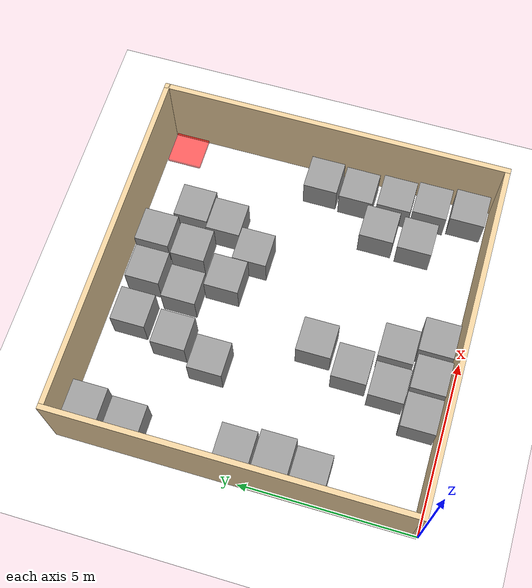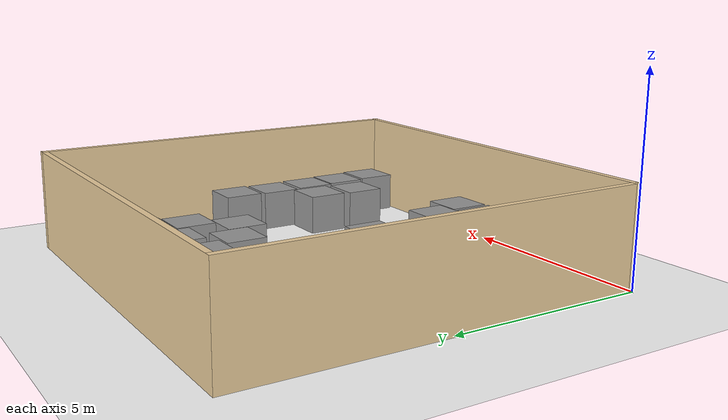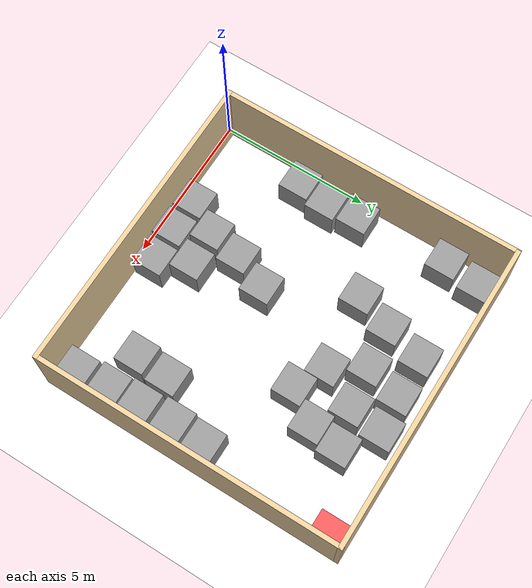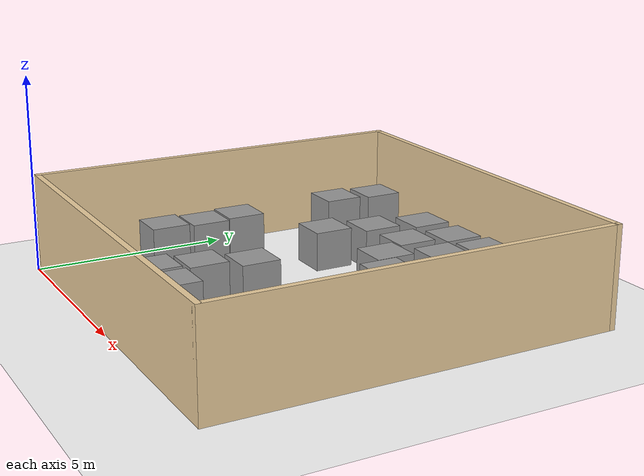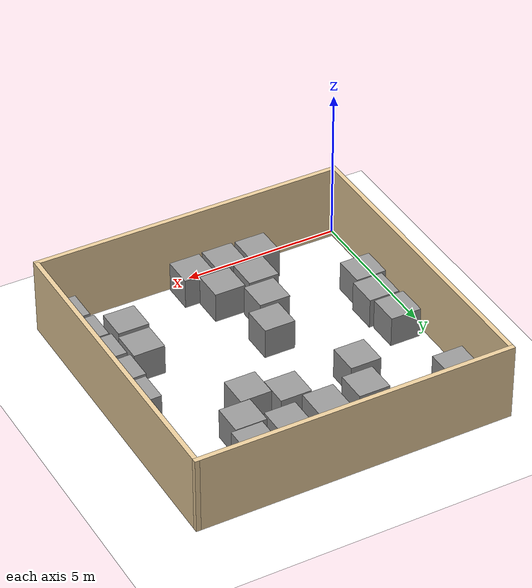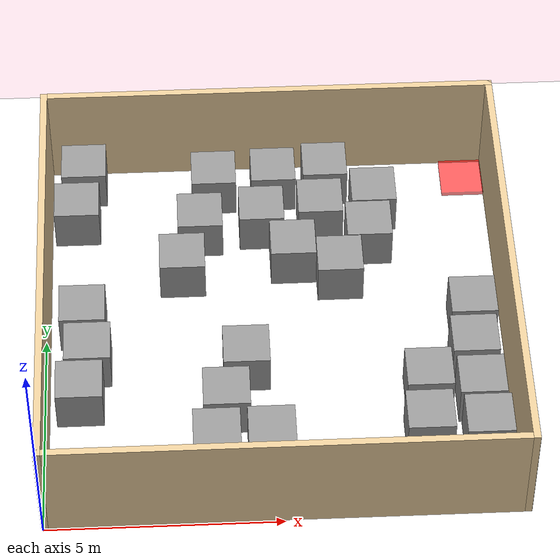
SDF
<sdf version="1.7">
 <world name="default">
  <light name="sun" type="directional">
   <pose>0 0 10 0 -0 0</pose>
   <diffuse>0.8 0.8 0.8 1</diffuse>
   <specular>0.2 0.2 0.2 1</specular>
   <attenuation>
    <range>1000</range>
    <constant>0.9</constant>
    <linear>0.01</linear>
    <quadratic>0.001</quadratic>
   </attenuation>
   <direction>-0.5 0.1 -0.9</direction>
   <spot><inner_angle>0</inner_angle><outer_angle>0</outer_angle><falloff>0</falloff></spot>
  </light>
  <gravity>0 0 -9.8</gravity>
  <magnetic_field>6e-06 2.3e-05 -4.2e-05</magnetic_field>
  <atmosphere type="adiabatic"/>
  <physics type="ode">
   <max_step_size>0.001</max_step_size>
   <real_time_factor>1</real_time_factor>
   <real_time_update_rate>1000</real_time_update_rate>
  </physics>
  <scene><ambient>0.4 0.4 0.4 1</ambient><background>0.7 0.7 0.7 1</background><shadows>1</shadows></scene>
  <audio><device>default</device></audio>
  <spherical_coordinates>
   <surface_model>EARTH_WGS84</surface_model>
   <latitude_deg>0</latitude_deg>
   <longitude_deg>0</longitude_deg>
   <elevation>0</elevation>
   <heading_deg>0</heading_deg>
  </spherical_coordinates>
  <model name="WALL">
   <pose>5.02351 5.11424 0 0 -0 0</pose>
   <link name="Wall_0">
    <collision name="Wall_0_Collision">
     <geometry><box><size>10.15 0.15 2.5</size></box></geometry>
     <pose>0 0 1.25 0 -0 0</pose>
    </collision>
    <visual name="Wall_0_Visual">
     <pose>0 0 1.25 0 -0 0</pose>
     <geometry><box><size>10.15 0.15 2.5</size></box></geometry>
     <material>
      <script><uri>file://media/materials/scripts/gazebo.material</uri><name>Gazebo/Grey</name></script>
      <ambient>0.921569 0.807843 0.615686 1</ambient>
     </material>
     <meta><layer>0</layer></meta>
    </visual>
    <pose>-5 -0 0 0 -0 1.5708</pose>
   </link>
   <link name="Wall_2">
    <collision name="Wall_2_Collision">
     <geometry><box><size>10.15 0.15 2.5</size></box></geometry>
     <pose>0 0 1.25 0 -0 0</pose>
    </collision>
    <visual name="Wall_2_Visual">
     <pose>0 0 1.25 0 -0 0</pose>
     <geometry><box><size>10.15 0.15 2.5</size></box></geometry>
     <material>
      <script><uri>file://media/materials/scripts/gazebo.material</uri><name>Gazebo/Grey</name></script>
      <ambient>0.921569 0.807843 0.615686 1</ambient>
     </material>
     <meta><layer>0</layer></meta>
    </visual>
    <pose>-0 -5 0 0 -0 0</pose>
   </link>
   <link name="Wall_4">
    <collision name="Wall_4_Collision">
     <geometry><box><size>10.15 0.15 2.5</size></box></geometry>
     <pose>0 0 1.25 0 -0 0</pose>
    </collision>
    <visual name="Wall_4_Visual">
     <pose>0 0 1.25 0 -0 0</pose>
     <geometry><box><size>10.15 0.15 2.5</size></box></geometry>
     <material>
      <script><uri>file://media/materials/scripts/gazebo.material</uri><name>Gazebo/Grey</name></script>
      <ambient>0.921569 0.807843 0.615686 1</ambient>
     </material>
     <meta><layer>0</layer></meta>
    </visual>
    <pose>5 -0 0 0 -0 1.5708</pose>
   </link>
   <link name="Wall_6">
    <collision name="Wall_6_Collision">
     <geometry><box><size>10.15 0.15 2.5</size></box></geometry>
     <pose>0 0 1.25 0 -0 0</pose>
    </collision>
    <visual name="Wall_6_Visual">
     <pose>0 0 1.25 0 -0 0</pose>
     <geometry><box><size>10.15 0.15 2.5</size></box></geometry>
     <material>
      <script><uri>file://media/materials/scripts/gazebo.material</uri><name>Gazebo/Grey</name></script>
      <ambient>0.921569 0.807843 0.615686 1</ambient>
     </material>
     <meta><layer>0</layer></meta>
    </visual>
    <pose>-0 5 0 0 -0 3.14159</pose>
   </link>
   <static>1</static>
  </model>
  <model name="ground_plane">
   <static>1</static>
   <link name="link">
    <collision name="collision">
     <geometry><plane><normal>0 0 1</normal><size>100 100</size></plane></geometry>
     <surface><friction><ode><mu>100</mu><mu2>50</mu2></ode></friction></surface>
    </collision>
    <visual name="visual">
     <cast_shadows>0</cast_shadows>
     <geometry><plane><normal>0 0 1</normal><size>100 100</size></plane></geometry>
     <material><ambient>1 1 1 1</ambient><diffuse>1 1 1 1</diffuse></material>
    </visual>
   </link>
   <pose>-1.76997 -0.846079 0 0 -0 0</pose>
  </model>
  <model name="goal_region">
   <static>1</static>
   <pose>9.5 9.5 0.05 0 -0 0</pose>
   <link name="link">
    <visual name="visual">
     <geometry><box><size>1 1 0.1</size></box></geometry>
     <material><ambient>1 0 0 0.6</ambient><diffuse>1 0 0 0.6</diffuse></material>
    </visual>
   </link>
  </model>
  <model name="start_marker"><static>1</static><pose>1 1 0 0 -0 0</pose></model>
  <model name="unit_box">
   <pose>3.03897 0.721861 0.499995 -1e-05 -0 -0</pose>
   <link name="link">
    <inertial>
     <mass>1</mass>
     <inertia>
      <ixx>0.166667</ixx>
      <ixy>0</ixy>
      <ixz>0</ixz>
      <iyy>0.166667</iyy>
      <iyz>0</iyz>
      <izz>0.166667</izz>
     </inertia>
    </inertial>
    <collision name="collision"><geometry><box><size>1 1 1</size></box></geometry></collision>
    <visual name="visual">
     <geometry><box><size>1 1 1</size></box></geometry>
     <material>
      <script><name>Gazebo/Grey</name><uri>file://media/materials/scripts/gazebo.material</uri></script>
     </material>
    </visual>
   </link>
  </model>
  <model name="unit_box_0">
   <pose>4.15376 0.707059 0.499995 0 1e-05 0</pose>
   <link name="link">
    <inertial>
     <mass>1</mass>
     <inertia>
      <ixx>0.166667</ixx>
      <ixy>0</ixy>
      <ixz>0</ixz>
      <iyy>0.166667</iyy>
      <iyz>0</iyz>
      <izz>0.166667</izz>
     </inertia>
    </inertial>
    <collision name="collision"><geometry><box><size>1 1 1</size></box></geometry></collision>
    <visual name="visual">
     <geometry><box><size>1 1 1</size></box></geometry>
     <material>
      <script><name>Gazebo/Grey</name><uri>file://media/materials/scripts/gazebo.material</uri></script>
     </material>
    </visual>
   </link>
  </model>
  <model name="unit_box_1">
   <pose>5.26454 0.73703 0.499995 -1e-05 -0 -0</pose>
   <link name="link">
    <inertial>
     <mass>1</mass>
     <inertia>
      <ixx>0.166667</ixx>
      <ixy>0</ixy>
      <ixz>0</ixz>
      <iyy>0.166667</iyy>
      <iyz>0</iyz>
      <izz>0.166667</izz>
     </inertia>
    </inertial>
    <collision name="collision"><geometry><box><size>1 1 1</size></box></geometry></collision>
    <visual name="visual">
     <geometry><box><size>1 1 1</size></box></geometry>
     <material>
      <script><name>Gazebo/Grey</name><uri>file://media/materials/scripts/gazebo.material</uri></script>
     </material>
    </visual>
   </link>
  </model>
  <model name="unit_box_2">
   <pose>3.63766 1.7567 0.499995 0 1e-05 0</pose>
   <link name="link">
    <inertial>
     <mass>1</mass>
     <inertia>
      <ixx>0.166667</ixx>
      <ixy>0</ixy>
      <ixz>0</ixz>
      <iyy>0.166667</iyy>
      <iyz>0</iyz>
      <izz>0.166667</izz>
     </inertia>
    </inertial>
    <collision name="collision"><geometry><box><size>1 1 1</size></box></geometry></collision>
    <visual name="visual">
     <geometry><box><size>1 1 1</size></box></geometry>
     <material>
      <script><name>Gazebo/Grey</name><uri>file://media/materials/scripts/gazebo.material</uri></script>
     </material>
    </visual>
   </link>
  </model>
  <model name="unit_box_3">
   <pose>4.7895 1.77189 0.499995 -1e-05 -0 -0</pose>
   <link name="link">
    <inertial>
     <mass>1</mass>
     <inertia>
      <ixx>0.166667</ixx>
      <ixy>0</ixy>
      <ixz>0</ixz>
      <iyy>0.166667</iyy>
      <iyz>0</iyz>
      <izz>0.166667</izz>
     </inertia>
    </inertial>
    <collision name="collision"><geometry><box><size>1 1 1</size></box></geometry></collision>
    <visual name="visual">
     <geometry><box><size>1 1 1</size></box></geometry>
     <material>
      <script><name>Gazebo/Grey</name><uri>file://media/materials/scripts/gazebo.material</uri></script>
     </material>
    </visual>
   </link>
  </model>
  <model name="unit_box_4">
   <pose>9.43046 0.790982 0.499995 0 1e-05 0</pose>
   <link name="link">
    <inertial>
     <mass>1</mass>
     <inertia>
      <ixx>0.166667</ixx>
      <ixy>0</ixy>
      <ixz>0</ixz>
      <iyy>0.166667</iyy>
      <iyz>0</iyz>
      <izz>0.166667</izz>
     </inertia>
    </inertial>
    <collision name="collision"><geometry><box><size>1 1 1</size></box></geometry></collision>
    <visual name="visual">
     <geometry><box><size>1 1 1</size></box></geometry>
     <material>
      <script><name>Gazebo/Grey</name><uri>file://media/materials/scripts/gazebo.material</uri></script>
     </material>
    </visual>
   </link>
  </model>
  <model name="unit_box_5">
   <pose>9.35364 1.8917 0.499995 -1e-05 -0 -0</pose>
   <link name="link">
    <inertial>
     <mass>1</mass>
     <inertia>
      <ixx>0.166667</ixx>
      <ixy>0</ixy>
      <ixz>0</ixz>
      <iyy>0.166667</iyy>
      <iyz>0</iyz>
      <izz>0.166667</izz>
     </inertia>
    </inertial>
    <collision name="collision"><geometry><box><size>1 1 1</size></box></geometry></collision>
    <visual name="visual">
     <geometry><box><size>1 1 1</size></box></geometry>
     <material>
      <script><name>Gazebo/Grey</name><uri>file://media/materials/scripts/gazebo.material</uri></script>
     </material>
    </visual>
   </link>
  </model>
  <model name="unit_box_6">
   <pose>9.29353 2.94322 0.499995 0 1e-05 0</pose>
   <link name="link">
    <inertial>
     <mass>1</mass>
     <inertia>
      <ixx>0.166667</ixx>
      <ixy>0</ixy>
      <ixz>0</ixz>
      <iyy>0.166667</iyy>
      <iyz>0</iyz>
      <izz>0.166667</izz>
     </inertia>
    </inertial>
    <collision name="collision"><geometry><box><size>1 1 1</size></box></geometry></collision>
    <visual name="visual">
     <geometry><box><size>1 1 1</size></box></geometry>
     <material>
      <script><name>Gazebo/Grey</name><uri>file://media/materials/scripts/gazebo.material</uri></script>
     </material>
    </visual>
   </link>
  </model>
  <model name="unit_box_7">
   <pose>8.1252 2.04867 0.499995 -1e-05 -0 -0</pose>
   <link name="link">
    <inertial>
     <mass>1</mass>
     <inertia>
      <ixx>0.166667</ixx>
      <ixy>0</ixy>
      <ixz>0</ixz>
      <iyy>0.166667</iyy>
      <iyz>0</iyz>
      <izz>0.166667</izz>
     </inertia>
    </inertial>
    <collision name="collision"><geometry><box><size>1 1 1</size></box></geometry></collision>
    <visual name="visual">
     <geometry><box><size>1 1 1</size></box></geometry>
     <material>
      <script><name>Gazebo/Grey</name><uri>file://media/materials/scripts/gazebo.material</uri></script>
     </material>
    </visual>
   </link>
  </model>
  <model name="unit_box_8">
   <pose>8.19505 3.18913 0.499995 0 1e-05 0</pose>
   <link name="link">
    <inertial>
     <mass>1</mass>
     <inertia>
      <ixx>0.166667</ixx>
      <ixy>0</ixy>
      <ixz>0</ixz>
      <iyy>0.166667</iyy>
      <iyz>0</iyz>
      <izz>0.166667</izz>
     </inertia>
    </inertial>
    <collision name="collision"><geometry><box><size>1 1 1</size></box></geometry></collision>
    <visual name="visual">
     <geometry><box><size>1 1 1</size></box></geometry>
     <material>
      <script><name>Gazebo/Grey</name><uri>file://media/materials/scripts/gazebo.material</uri></script>
     </material>
    </visual>
   </link>
  </model>
  <model name="unit_box_9">
   <pose>9.2458 4.06912 0.499995 -1e-05 -0 -0</pose>
   <link name="link">
    <inertial>
     <mass>1</mass>
     <inertia>
      <ixx>0.166667</ixx>
      <ixy>0</ixy>
      <ixz>0</ixz>
      <iyy>0.166667</iyy>
      <iyz>0</iyz>
      <izz>0.166667</izz>
     </inertia>
    </inertial>
    <collision name="collision"><geometry><box><size>1 1 1</size></box></geometry></collision>
    <visual name="visual">
     <geometry><box><size>1 1 1</size></box></geometry>
     <material>
      <script><name>Gazebo/Grey</name><uri>file://media/materials/scripts/gazebo.material</uri></script>
     </material>
    </visual>
   </link>
  </model>
  <model name="unit_box_10">
   <pose>3.8708 2.85523 0.499995 0 1e-05 0</pose>
   <link name="link">
    <inertial>
     <mass>1</mass>
     <inertia>
      <ixx>0.166667</ixx>
      <ixy>0</ixy>
      <ixz>0</ixz>
      <iyy>0.166667</iyy>
      <iyz>0</iyz>
      <izz>0.166667</izz>
     </inertia>
    </inertial>
    <collision name="collision"><geometry><box><size>1 1 1</size></box></geometry></collision>
    <visual name="visual">
     <geometry><box><size>1 1 1</size></box></geometry>
     <material>
      <script><name>Gazebo/Grey</name><uri>file://media/materials/scripts/gazebo.material</uri></script>
     </material>
    </visual>
   </link>
  </model>
  <model name="unit_box_11">
   <pose>4.329 3.98441 0.499995 -1e-05 -0 -0</pose>
   <link name="link">
    <inertial>
     <mass>1</mass>
     <inertia>
      <ixx>0.166667</ixx>
      <ixy>0</ixy>
      <ixz>0</ixz>
      <iyy>0.166667</iyy>
      <iyz>0</iyz>
      <izz>0.166667</izz>
     </inertia>
    </inertial>
    <collision name="collision"><geometry><box><size>1 1 1</size></box></geometry></collision>
    <visual name="visual">
     <geometry><box><size>1 1 1</size></box></geometry>
     <material>
      <script><name>Gazebo/Grey</name><uri>file://media/materials/scripts/gazebo.material</uri></script>
     </material>
    </visual>
   </link>
  </model>
  <model name="unit_box_12">
   <pose>6.48329 6.47619 0.499995 0 1e-05 0</pose>
   <link name="link">
    <inertial>
     <mass>1</mass>
     <inertia>
      <ixx>0.166667</ixx>
      <ixy>0</ixy>
      <ixz>0</ixz>
      <iyy>0.166667</iyy>
      <iyz>0</iyz>
      <izz>0.166667</izz>
     </inertia>
    </inertial>
    <collision name="collision"><geometry><box><size>1 1 1</size></box></geometry></collision>
    <visual name="visual">
     <geometry><box><size>1 1 1</size></box></geometry>
     <material>
      <script><name>Gazebo/Grey</name><uri>file://media/materials/scripts/gazebo.material</uri></script>
     </material>
    </visual>
   </link>
  </model>
  <model name="unit_box_13">
   <pose>7.19045 7.48984 0.499995 -1e-05 -0 -0</pose>
   <link name="link">
    <inertial>
     <mass>1</mass>
     <inertia>
      <ixx>0.166667</ixx>
      <ixy>0</ixy>
      <ixz>0</ixz>
      <iyy>0.166667</iyy>
      <iyz>0</iyz>
      <izz>0.166667</izz>
     </inertia>
    </inertial>
    <collision name="collision"><geometry><box><size>1 1 1</size></box></geometry></collision>
    <visual name="visual">
     <geometry><box><size>1 1 1</size></box></geometry>
     <material>
      <script><name>Gazebo/Grey</name><uri>file://media/materials/scripts/gazebo.material</uri></script>
     </material>
    </visual>
   </link>
  </model>
  <model name="unit_box_14">
   <pose>7.3525 8.51574 0.499995 0 1e-05 0</pose>
   <link name="link">
    <inertial>
     <mass>1</mass>
     <inertia>
      <ixx>0.166667</ixx>
      <ixy>0</ixy>
      <ixz>0</ixz>
      <iyy>0.166667</iyy>
      <iyz>0</iyz>
      <izz>0.166667</izz>
     </inertia>
    </inertial>
    <collision name="collision"><geometry><box><size>1 1 1</size></box></geometry></collision>
    <visual name="visual">
     <geometry><box><size>1 1 1</size></box></geometry>
     <material>
      <script><name>Gazebo/Grey</name><uri>file://media/materials/scripts/gazebo.material</uri></script>
     </material>
    </visual>
   </link>
  </model>
  <model name="unit_box_15">
   <pose>6.29291 9.34239 0.499995 -1e-05 -0 -0</pose>
   <link name="link">
    <inertial>
     <mass>1</mass>
     <inertia>
      <ixx>0.166667</ixx>
      <ixy>0</ixy>
      <ixz>0</ixz>
      <iyy>0.166667</iyy>
      <iyz>0</iyz>
      <izz>0.166667</izz>
     </inertia>
    </inertial>
    <collision name="collision"><geometry><box><size>1 1 1</size></box></geometry></collision>
    <visual name="visual">
     <geometry><box><size>1 1 1</size></box></geometry>
     <material>
      <script><name>Gazebo/Grey</name><uri>file://media/materials/scripts/gazebo.material</uri></script>
     </material>
    </visual>
   </link>
  </model>
  <model name="unit_box_16">
   <pose>6.1352 8.21455 0.499995 0 1e-05 0</pose>
   <link name="link">
    <inertial>
     <mass>1</mass>
     <inertia>
      <ixx>0.166667</ixx>
      <ixy>0</ixy>
      <ixz>0</ixz>
      <iyy>0.166667</iyy>
      <iyz>0</iyz>
      <izz>0.166667</izz>
     </inertia>
    </inertial>
    <collision name="collision"><geometry><box><size>1 1 1</size></box></geometry></collision>
    <visual name="visual">
     <geometry><box><size>1 1 1</size></box></geometry>
     <material>
      <script><name>Gazebo/Grey</name><uri>file://media/materials/scripts/gazebo.material</uri></script>
     </material>
    </visual>
   </link>
  </model>
  <model name="unit_box_17">
   <pose>5.4718 6.99608 0.499995 -1e-05 -0 -0</pose>
   <link name="link">
    <inertial>
     <mass>1</mass>
     <inertia>
      <ixx>0.166667</ixx>
      <ixy>0</ixy>
      <ixz>0</ixz>
      <iyy>0.166667</iyy>
      <iyz>0</iyz>
      <izz>0.166667</izz>
     </inertia>
    </inertial>
    <collision name="collision"><geometry><box><size>1 1 1</size></box></geometry></collision>
    <visual name="visual">
     <geometry><box><size>1 1 1</size></box></geometry>
     <material>
      <script><name>Gazebo/Grey</name><uri>file://media/materials/scripts/gazebo.material</uri></script>
     </material>
    </visual>
   </link>
  </model>
  <model name="unit_box_18">
   <pose>4.81057 8.04682 0.499995 0 1e-05 0</pose>
   <link name="link">
    <inertial>
     <mass>1</mass>
     <inertia>
      <ixx>0.166667</ixx>
      <ixy>0</ixy>
      <ixz>0</ixz>
      <iyy>0.166667</iyy>
      <iyz>0</iyz>
      <izz>0.166667</izz>
     </inertia>
    </inertial>
    <collision name="collision"><geometry><box><size>1 1 1</size></box></geometry></collision>
    <visual name="visual">
     <geometry><box><size>1 1 1</size></box></geometry>
     <material>
      <script><name>Gazebo/Grey</name><uri>file://media/materials/scripts/gazebo.material</uri></script>
     </material>
    </visual>
   </link>
  </model>
  <model name="unit_box_19">
   <pose>5.11659 9.22391 0.499995 -1e-05 -0 -0</pose>
   <link name="link">
    <inertial>
     <mass>1</mass>
     <inertia>
      <ixx>0.166667</ixx>
      <ixy>0</ixy>
      <ixz>0</ixz>
      <iyy>0.166667</iyy>
      <iyz>0</iyz>
      <izz>0.166667</izz>
     </inertia>
    </inertial>
    <collision name="collision"><geometry><box><size>1 1 1</size></box></geometry></collision>
    <visual name="visual">
     <geometry><box><size>1 1 1</size></box></geometry>
     <material>
      <script><name>Gazebo/Grey</name><uri>file://media/materials/scripts/gazebo.material</uri></script>
     </material>
    </visual>
   </link>
  </model>
  <model name="unit_box_20">
   <pose>3.76878 9.17786 0.499995 0 1e-05 0</pose>
   <link name="link">
    <inertial>
     <mass>1</mass>
     <inertia>
      <ixx>0.166667</ixx>
      <ixy>0</ixy>
      <ixz>0</ixz>
      <iyy>0.166667</iyy>
      <iyz>0</iyz>
      <izz>0.166667</izz>
     </inertia>
    </inertial>
    <collision name="collision"><geometry><box><size>1 1 1</size></box></geometry></collision>
    <visual name="visual">
     <geometry><box><size>1 1 1</size></box></geometry>
     <material>
      <script><name>Gazebo/Grey</name><uri>file://media/materials/scripts/gazebo.material</uri></script>
     </material>
    </visual>
   </link>
  </model>
  <model name="unit_box_21">
   <pose>3.43011 7.89177 0.499995 -1e-05 -0 -0</pose>
   <link name="link">
    <inertial>
     <mass>1</mass>
     <inertia>
      <ixx>0.166667</ixx>
      <ixy>0</ixy>
      <ixz>0</ixz>
      <iyy>0.166667</iyy>
      <iyz>0</iyz>
      <izz>0.166667</izz>
     </inertia>
    </inertial>
    <collision name="collision"><geometry><box><size>1 1 1</size></box></geometry></collision>
    <visual name="visual">
     <geometry><box><size>1 1 1</size></box></geometry>
     <material>
      <script><name>Gazebo/Grey</name><uri>file://media/materials/scripts/gazebo.material</uri></script>
     </material>
    </visual>
   </link>
  </model>
  <model name="unit_box_22">
   <pose>3.00945 6.69287 0.499995 0 1e-05 0</pose>
   <link name="link">
    <inertial>
     <mass>1</mass>
     <inertia>
      <ixx>0.166667</ixx>
      <ixy>0</ixy>
      <ixz>0</ixz>
      <iyy>0.166667</iyy>
      <iyz>0</iyz>
      <izz>0.166667</izz>
     </inertia>
    </inertial>
    <collision name="collision"><geometry><box><size>1 1 1</size></box></geometry></collision>
    <visual name="visual">
     <geometry><box><size>1 1 1</size></box></geometry>
     <material>
      <script><name>Gazebo/Grey</name><uri>file://media/materials/scripts/gazebo.material</uri></script>
     </material>
    </visual>
   </link>
  </model>
  <model name="unit_box_23">
   <pose>0.758499 3.16838 0.499995 -1e-05 -0 -0</pose>
   <link name="link">
    <inertial>
     <mass>1</mass>
     <inertia>
      <ixx>0.166667</ixx>
      <ixy>0</ixy>
      <ixz>0</ixz>
      <iyy>0.166667</iyy>
      <iyz>0</iyz>
      <izz>0.166667</izz>
     </inertia>
    </inertial>
    <collision name="collision"><geometry><box><size>1 1 1</size></box></geometry></collision>
    <visual name="visual">
     <geometry><box><size>1 1 1</size></box></geometry>
     <material>
      <script><name>Gazebo/Grey</name><uri>file://media/materials/scripts/gazebo.material</uri></script>
     </material>
    </visual>
   </link>
  </model>
  <model name="unit_box_24">
   <pose>0.923909 4.21605 0.499995 0 1e-05 0</pose>
   <link name="link">
    <inertial>
     <mass>1</mass>
     <inertia>
      <ixx>0.166667</ixx>
      <ixy>0</ixy>
      <ixz>0</ixz>
      <iyy>0.166667</iyy>
      <iyz>0</iyz>
      <izz>0.166667</izz>
     </inertia>
    </inertial>
    <collision name="collision"><geometry><box><size>1 1 1</size></box></geometry></collision>
    <visual name="visual">
     <geometry><box><size>1 1 1</size></box></geometry>
     <material>
      <script><name>Gazebo/Grey</name><uri>file://media/materials/scripts/gazebo.material</uri></script>
     </material>
    </visual>
   </link>
  </model>
  <model name="unit_box_25">
   <pose>0.83096 9.51215 0.499995 -1e-05 -0 -0</pose>
   <link name="link">
    <inertial>
     <mass>1</mass>
     <inertia>
      <ixx>0.166667</ixx>
      <ixy>0</ixy>
      <ixz>0</ixz>
      <iyy>0.166667</iyy>
      <iyz>0</iyz>
      <izz>0.166667</izz>
     </inertia>
    </inertial>
    <collision name="collision"><geometry><box><size>1 1 1</size></box></geometry></collision>
    <visual name="visual">
     <geometry><box><size>1 1 1</size></box></geometry>
     <material>
      <script><name>Gazebo/Grey</name><uri>file://media/materials/scripts/gazebo.material</uri></script>
     </material>
    </visual>
   </link>
  </model>
  <model name="unit_box_26">
   <pose>0.680559 8.3311 0.499995 0 1e-05 0</pose>
   <link name="link">
    <inertial>
     <mass>1</mass>
     <inertia>
      <ixx>0.166667</ixx>
      <ixy>0</ixy>
      <ixz>0</ixz>
      <iyy>0.166667</iyy>
      <iyz>0</iyz>
      <izz>0.166667</izz>
     </inertia>
    </inertial>
    <collision name="collision"><geometry><box><size>1 1 1</size></box></geometry></collision>
    <visual name="visual">
     <geometry><box><size>1 1 1</size></box></geometry>
     <material>
      <script><name>Gazebo/Grey</name><uri>file://media/materials/scripts/gazebo.material</uri></script>
     </material>
    </visual>
   </link>
  </model>
  <model name="unit_box_27">
   <pose>0.815865 5.27721 0.499995 -1e-05 -0 0</pose>
   <link name="link">
    <inertial>
     <mass>1</mass>
     <inertia>
      <ixx>0.166667</ixx>
      <ixy>0</ixy>
      <ixz>0</ixz>
      <iyy>0.166667</iyy>
      <iyz>0</iyz>
      <izz>0.166667</izz>
     </inertia>
    </inertial>
    <collision name="collision"><geometry><box><size>1 1 1</size></box></geometry></collision>
    <visual name="visual">
     <geometry><box><size>1 1 1</size></box></geometry>
     <material>
      <script><name>Gazebo/Grey</name><uri>file://media/materials/scripts/gazebo.material</uri></script>
     </material>
    </visual>
   </link>
  </model>
  <model name="unit_box_28">
   <pose>9.30569 5.15782 0.5 0 -0 0</pose>
   <link name="link">
    <inertial>
     <mass>1</mass>
     <inertia>
      <ixx>0.166667</ixx>
      <ixy>0</ixy>
      <ixz>0</ixz>
      <iyy>0.166667</iyy>
      <iyz>0</iyz>
      <izz>0.166667</izz>
     </inertia>
    </inertial>
    <collision name="collision"><geometry><box><size>1 1 1</size></box></geometry></collision>
    <visual name="visual">
     <geometry><box><size>1 1 1</size></box></geometry>
     <material>
      <script><name>Gazebo/Grey</name><uri>file://media/materials/scripts/gazebo.material</uri></script>
     </material>
    </visual>
   </link>
  </model>
 </world>
</sdf>
